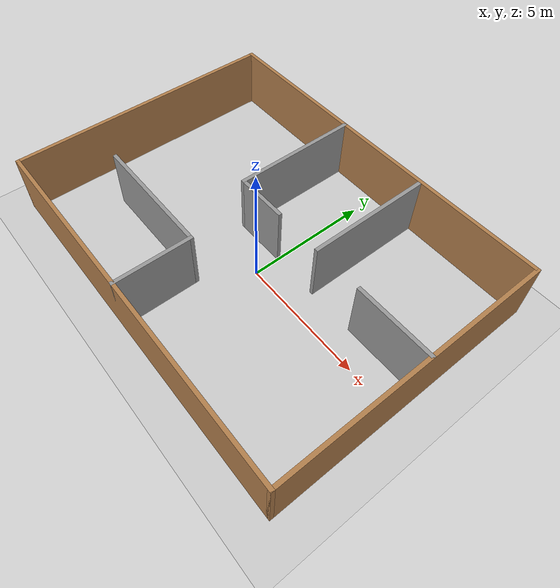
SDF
<sdf version="1.6">
 <world name="default">
  <light name="sun" type="directional">
   <pose>0 0 10 0 -0 0</pose>
   <diffuse>0.8 0.8 0.8 1</diffuse>
   <specular>0.2 0.2 0.2 1</specular>
   <attenuation>
    <range>1000</range>
    <constant>0.9</constant>
    <linear>0.01</linear>
    <quadratic>0.001</quadratic>
   </attenuation>
   <direction>-0.5 0.1 -0.9</direction>
  </light>
  <model name="ground_plane">
   <static>1</static>
   <link name="link">
    <collision name="collision">
     <geometry><plane><normal>0 0 1</normal><size>100 100</size></plane></geometry>
     <surface><friction><ode><mu>100</mu><mu2>50</mu2></ode></friction></surface>
    </collision>
    <visual name="visual">
     <cast_shadows>0</cast_shadows>
     <geometry><plane><normal>0 0 1</normal><size>100 100</size></plane></geometry>
     <material>
      <script><uri>file://media/materials/scripts/gazebo.material</uri><name>Gazebo/Grey</name></script>
     </material>
    </visual>
   </link>
  </model>
  <gravity>0 0 -9.8</gravity>
  <magnetic_field>6e-06 2.3e-05 -4.2e-05</magnetic_field>
  <atmosphere type="adiabatic"/>
  <physics name="default_physics" default="0" type="ode">
   <max_step_size>0.001</max_step_size>
   <real_time_factor>1</real_time_factor>
   <real_time_update_rate>1000</real_time_update_rate>
  </physics>
  <scene><ambient>0.4 0.4 0.4 1</ambient><background>0.7 0.7 0.7 1</background><shadows>1</shadows></scene>
  <spherical_coordinates>
   <surface_model>EARTH_WGS84</surface_model>
   <latitude_deg>0</latitude_deg>
   <longitude_deg>0</longitude_deg>
   <elevation>0</elevation>
   <heading_deg>0</heading_deg>
  </spherical_coordinates>
  <model name="test">
   <pose>-0.591034 0.583322 -0 0 -0 0</pose>
   <link name="Wall_10">
    <collision name="Wall_10_Collision">
     <geometry><box><size>11.15 0.15 2.5</size></box></geometry>
     <pose>0 0 1.25 0 -0 0</pose>
    </collision>
    <visual name="Wall_10_Visual">
     <pose>0 0 1.25 0 -0 0</pose>
     <geometry><box><size>11.15 0.15 2.5</size></box></geometry>
     <material>
      <script><uri>file://media/materials/scripts/gazebo.material</uri><name>Gazebo/Wood</name></script>
      <ambient>0.760784 0.662745 0.627451 1</ambient>
     </material>
     <meta><layer>0</layer></meta>
    </visual>
    <pose>7.5 0 0 0 -0 -1.5708</pose>
   </link>
   <link name="Wall_12">
    <collision name="Wall_12_Collision">
     <geometry><box><size>5.15 0.15 2.5</size></box></geometry>
     <pose>0 0 1.25 0 -0 0</pose>
    </collision>
    <visual name="Wall_12_Visual">
     <pose>0 0 1.25 0 -0 0</pose>
     <geometry><box><size>5.15 0.15 2.5</size></box></geometry>
     <material>
      <script><uri>file://media/materials/scripts/gazebo.material</uri><name>Gazebo/Grey</name></script>
      <ambient>1 1 1 1</ambient>
     </material>
     <meta><layer>0</layer></meta>
    </visual>
    <pose>-3 -2.5 0 0 -0 0</pose>
   </link>
   <link name="Wall_14">
    <collision name="Wall_14_Collision">
     <geometry><box><size>3.15 0.15 2.5</size></box></geometry>
     <pose>0 0 1.25 0 -0 0</pose>
    </collision>
    <visual name="Wall_14_Visual">
     <pose>0 0 1.25 0 -0 0</pose>
     <geometry><box><size>3.15 0.15 2.5</size></box></geometry>
     <material>
      <script><uri>file://media/materials/scripts/gazebo.material</uri><name>Gazebo/Grey</name></script>
      <ambient>1 1 1 1</ambient>
     </material>
     <meta><layer>0</layer></meta>
    </visual>
    <pose>-0.5 -4 0 0 -0 1.5708</pose>
   </link>
   <link name="Wall_16">
    <collision name="Wall_16_Collision">
     <geometry><box><size>2.15 0.15 2.5</size></box></geometry>
     <pose>0 0 1.25 0 -0 0</pose>
    </collision>
    <visual name="Wall_16_Visual">
     <pose>0 0 1.25 0 -0 0</pose>
     <geometry><box><size>2.15 0.15 2.5</size></box></geometry>
     <material>
      <script><uri>file://media/materials/scripts/gazebo.material</uri><name>Gazebo/Grey</name></script>
      <ambient>1 1 1 1</ambient>
     </material>
     <meta><layer>0</layer></meta>
    </visual>
    <pose>-0.5 0.5 0 0 -0 0</pose>
   </link>
   <link name="Wall_18">
    <collision name="Wall_18_Collision">
     <geometry><box><size>3.15 0.15 2.5</size></box></geometry>
     <pose>0 0 1.25 0 -0 0</pose>
    </collision>
    <visual name="Wall_18_Visual">
     <pose>0 0 1.25 0 -0 0</pose>
     <geometry><box><size>3.15 0.15 2.5</size></box></geometry>
     <material>
      <script><uri>file://media/materials/scripts/gazebo.material</uri><name>Gazebo/Grey</name></script>
      <ambient>1 1 1 1</ambient>
     </material>
     <meta><layer>0</layer></meta>
    </visual>
    <pose>6 0.5 0 0 -0 0</pose>
   </link>
   <link name="Wall_20">
    <collision name="Wall_20_Collision">
     <geometry><box><size>5.15 0.15 2.5</size></box></geometry>
     <pose>0 0 1.25 0 -0 0</pose>
    </collision>
    <visual name="Wall_20_Visual">
     <pose>0 0 1.25 0 -0 0</pose>
     <geometry><box><size>5.15 0.15 2.5</size></box></geometry>
     <material>
      <script><uri>file://media/materials/scripts/gazebo.material</uri><name>Gazebo/Grey</name></script>
      <ambient>1 1 1 1</ambient>
     </material>
     <meta><layer>0</layer></meta>
    </visual>
    <pose>-1.5 3 0 0 -0 -1.5708</pose>
   </link>
   <link name="Wall_22">
    <collision name="Wall_22_Collision">
     <geometry><box><size>5.15 0.15 2.5</size></box></geometry>
     <pose>0 0 1.25 0 -0 0</pose>
    </collision>
    <visual name="Wall_22_Visual">
     <pose>0 0 1.25 0 -0 0</pose>
     <geometry><box><size>5.15 0.15 2.5</size></box></geometry>
     <material>
      <script><uri>file://media/materials/scripts/gazebo.material</uri><name>Gazebo/Grey</name></script>
      <ambient>1 1 1 1</ambient>
     </material>
     <meta><layer>0</layer></meta>
    </visual>
    <pose>2.5 3 0 0 -0 -1.5708</pose>
   </link>
   <link name="Wall_4">
    <collision name="Wall_4_Collision">
     <geometry><box><size>15.15 0.15 2.5</size></box></geometry>
     <pose>0 0 1.25 0 -0 0</pose>
    </collision>
    <visual name="Wall_4_Visual">
     <pose>0 0 1.25 0 -0 0</pose>
     <geometry><box><size>15.15 0.15 2.5</size></box></geometry>
     <material>
      <script><uri>file://media/materials/scripts/gazebo.material</uri><name>Gazebo/Wood</name></script>
      <ambient>0.760784 0.662745 0.627451 1</ambient>
     </material>
     <meta><layer>0</layer></meta>
    </visual>
    <pose>0 -5.5 0 0 -0 0</pose>
   </link>
   <link name="Wall_6">
    <collision name="Wall_6_Collision">
     <geometry><box><size>15.15 0.15 2.5</size></box></geometry>
     <pose>0 0 1.25 0 -0 0</pose>
    </collision>
    <visual name="Wall_6_Visual">
     <pose>0 0 1.25 0 -0 0</pose>
     <geometry><box><size>15.15 0.15 2.5</size></box></geometry>
     <material>
      <script><uri>file://media/materials/scripts/gazebo.material</uri><name>Gazebo/Wood</name></script>
      <ambient>0.760784 0.662745 0.627451 1</ambient>
     </material>
     <meta><layer>0</layer></meta>
    </visual>
    <pose>0 5.5 0 0 -0 0</pose>
   </link>
   <link name="Wall_8">
    <collision name="Wall_8_Collision">
     <geometry><box><size>11.15 0.15 2.5</size></box></geometry>
     <pose>0 0 1.25 0 -0 0</pose>
    </collision>
    <visual name="Wall_8_Visual">
     <pose>0 0 1.25 0 -0 0</pose>
     <geometry><box><size>11.15 0.15 2.5</size></box></geometry>
     <material>
      <script><uri>file://media/materials/scripts/gazebo.material</uri><name>Gazebo/Wood</name></script>
      <ambient>0.760784 0.662745 0.627451 1</ambient>
     </material>
     <meta><layer>0</layer></meta>
    </visual>
    <pose>-7.5 0 0 0 -0 -1.5708</pose>
   </link>
   <static>1</static>
  </model>
 </world>
</sdf>
